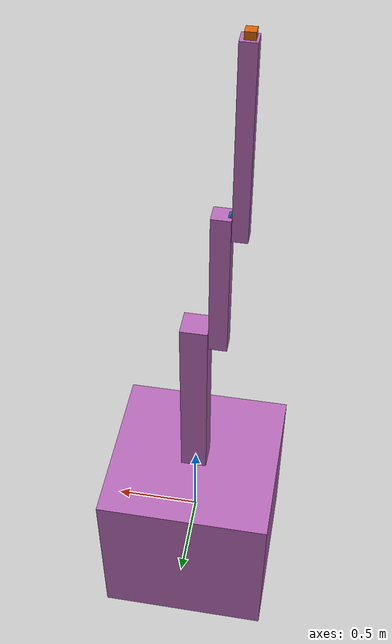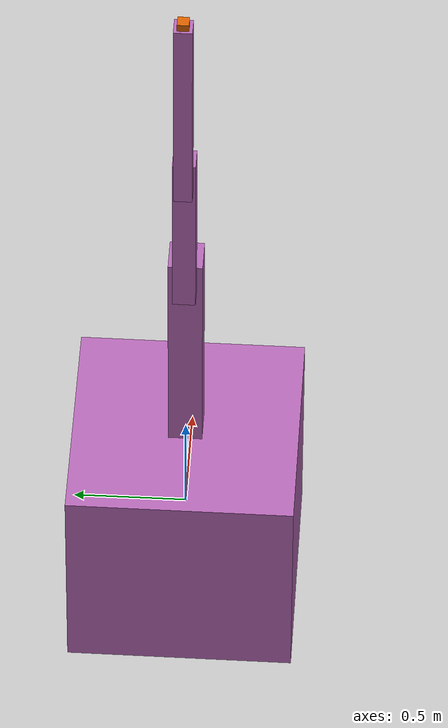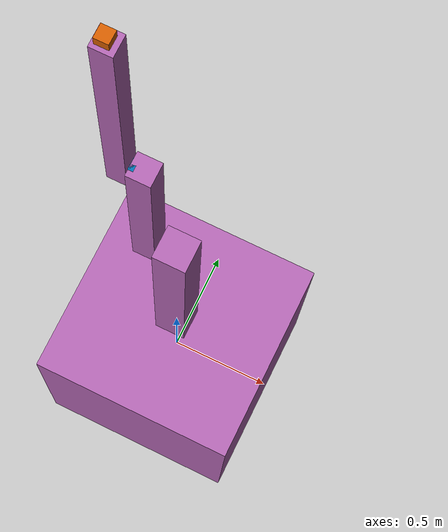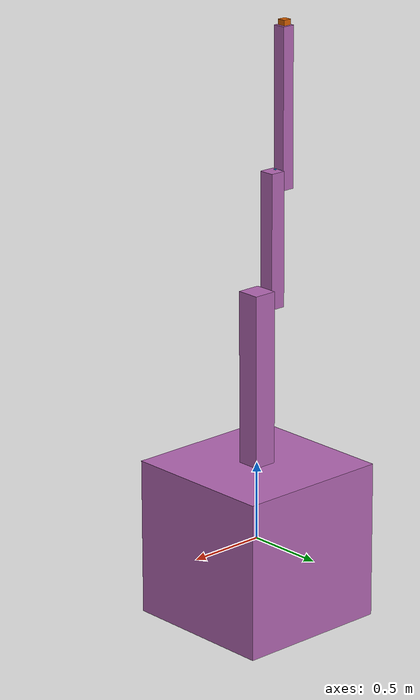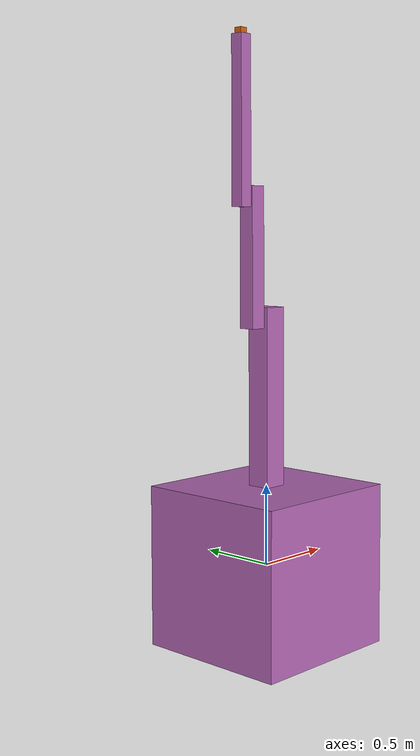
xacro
<?xml version="1.0"?>
<robot name="meu_manipulador" xmlns:xacro="http://www.ros.org/wiki/xacro">
    <material name="base">
        <color rgba="0.7 0.4 0.7 1" />
    </material>

    <material name="elodabase">
        <color rgba="0.7 0.4 0.7 1" />
    </material>

    <material name="elo1">
        <color rgba="0.7 0.4 0.7 1" />
    </material>

    <material name="elo2">
        <color rgba="0.7 0.4 0.7 1" />
    </material>

    <link name="base_link">
        <visual>
            <origin xyz="0 0 0"/>
            <geometry>
                <box size="1 1 1"/>
            </geometry>
            <material name="base"/>
        </visual>
        <collision>
            <origin xyz="0 0 0"/>
            <geometry>
                <box size="1 1 1"/>
            </geometry>
        </collision>
    </link>

    <link name="elodabase">
        <visual>
            <origin xyz="0 0 0.5"/>
            <geometry>
                <box size="0.15 0.15 1.2"/>
            </geometry>
            <material name="elodabase"/>
        </visual>
    </link>

    <joint name="elobase_rotaçao" type="revolute">
        <parent link="base_link" />
        <child link="elodabase" />
        <origin xyz="0 0 0.5" />
        <axis xyz="0 1 0" />
        <limit lower="-0.900" upper="0.900" effort="100" velocity="3.0" />
        <dynamics damping="0.0" friction="0.0" />
        <transmission name="junta_elodabase_trans">
            <type>SimpleTransmission</type>
            <actuator name="junta_elodabase_motor">
                <mechanicalReduction>1</mechanicalReduction>
            </actuator>
            <joint name="junta_elodabase">
                <hardwareInterface>PositionJointInterface</hardwareInterface>
            </joint>
        </transmission>
    </joint>

<link name="elo1">
    <visual>
        <origin xyz="-0.125 0 0.4"/>
        <geometry>
            <box size="0.1 0.1 0.85"/>
        </geometry>
        <material name="elo1"/>
    </visual>
</link>

<joint name="junta_elo1" type="revolute">
    <parent link="elodabase" />
    <child link="elo1" />
    <origin xyz="0 0 1" />
    <axis xyz="1 0 0" />
    <limit lower="-1.580" upper="1.580" effort="100" velocity="3.0" />
    <transmission name="junta1_trans">
        <type>SimpleTransmission</type>
        <actuator name="junta1_motor">
            <mechanicalReduction>1</mechanicalReduction>
        </actuator>
        <joint name="junta1">
            <hardwareInterface>PositionJointInterface</hardwareInterface>
        </joint>
    </transmission>
</joint>

<link name="elo2">
    <visual>
        <origin xyz="-0.216 0 0.40"/>
        <geometry>
            <box size="0.08 0.08 1.0"/>
        </geometry>
        <material name="elo2"/>
    </visual>
</link>

<joint name="junta_elo2" type="revolute">
    <parent link="elo1" />
    <child link="elo2" />
    <origin xyz="0 0 0.8" />
    <axis xyz="1 0 0" />
    <limit lower="-2.700" upper="2.700" effort="100" velocity="3.0" />
    <transmission name="junta2_trans">
        <type>SimpleTransmission</type>
        <actuator name="junta2_motor">
            <mechanicalReduction>1</mechanicalReduction>
        </actuator>
        <joint name="junta2">
            <hardwareInterface>PositionJointInterface</hardwareInterface>
        </joint>
    </transmission>
</joint>

<link name="junta2">
    <visual>
        <origin xyz="0 0 0"/>
        <geometry>
            <box size="0.05 0.05 0.05"/>
        </geometry>
    </visual>
</link>

<joint name="junta_junta2" type="fixed">
    <parent link="elo2" />
    <child link="junta2" />
    <origin xyz="-0.18 0 0" />
</joint>

<link name="visor">
    <visual>
        <origin xyz="0 0 0"/>
        <geometry>
            <box size="0.05 0.05 0.05"/>
        </geometry>
    </visual>
</link>

<link name="junta1">
    <visual>
        <origin xyz="0 0 0"/>
        <geometry>
            <box size="0.05 0.05 0.05"/>
        </geometry>
    </visual>
</link>

<joint name="junta_junta1" type="fixed">
    <parent link="elo1" />
    <child link="junta1" />
    <origin xyz="-0.08 0 0" />
</joint>

<joint name="junta_visor" type="fixed">
    <parent link="elo2" />
    <child link="visor" />
    <origin xyz="-0.22 0 0.91" />
</joint>

</robot>
